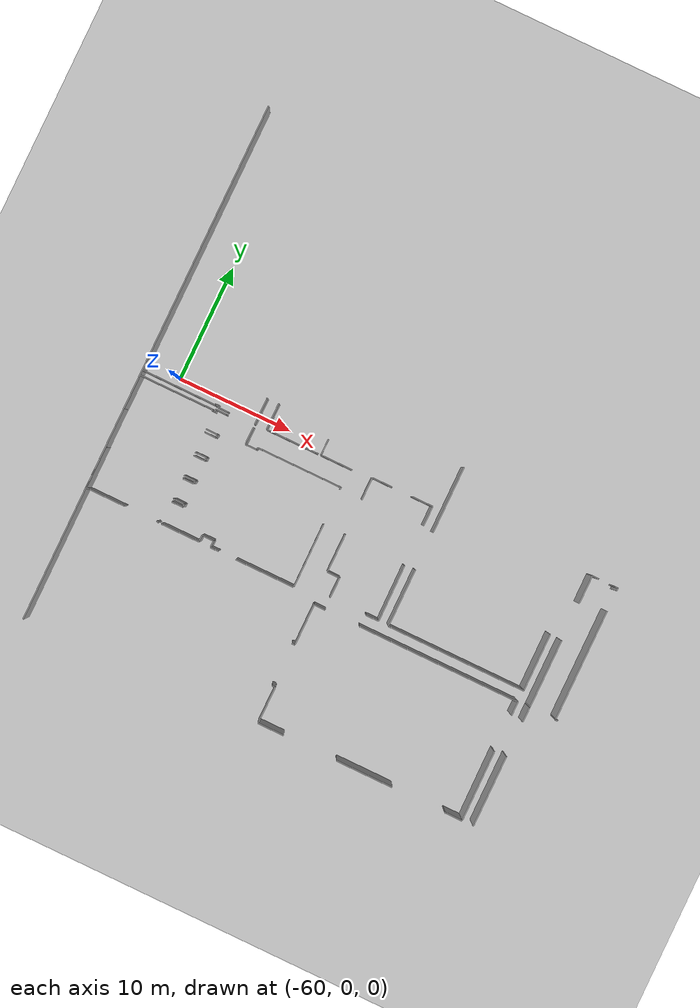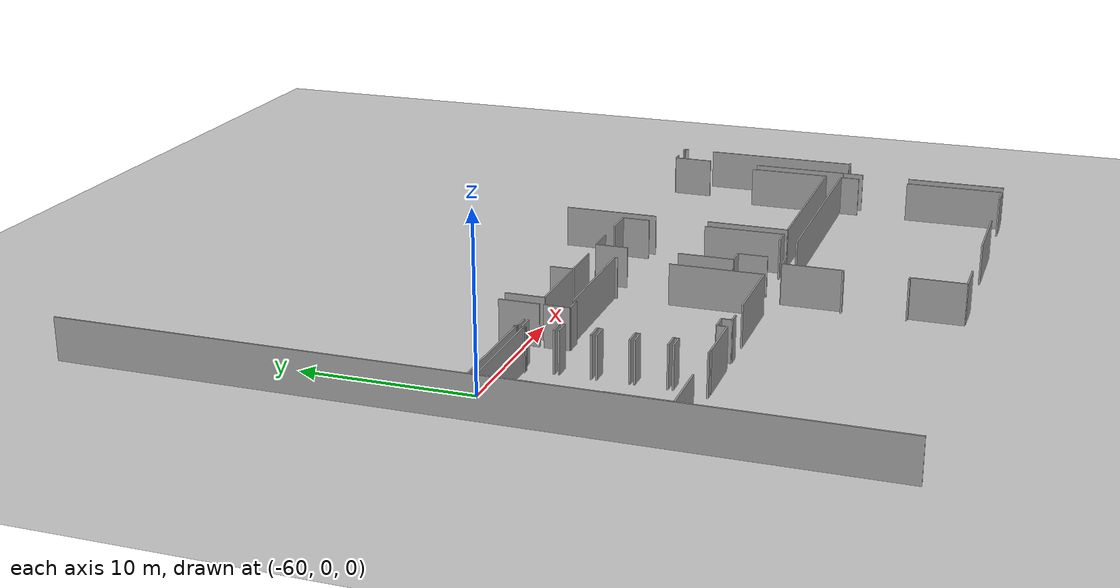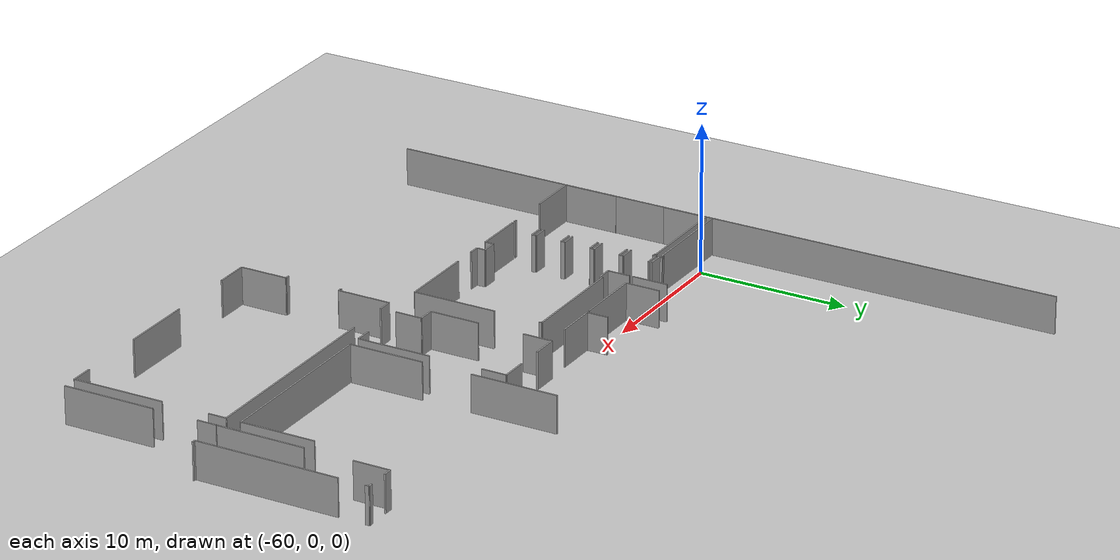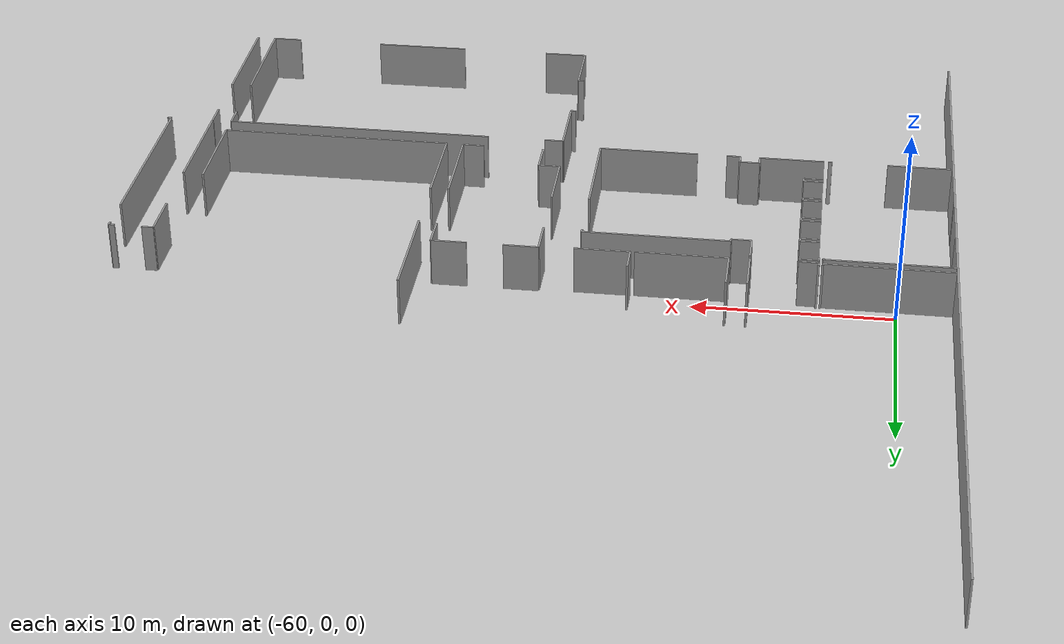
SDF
<sdf version="1.6">
 <world name="default">
  <model name="ground_plane">
   <static>1</static>
   <link name="link">
    <collision name="collision">
     <geometry><plane><normal>0 0 1</normal><size>100 100</size></plane></geometry>
     <surface><friction><ode><mu>100</mu><mu2>50</mu2></ode></friction></surface>
    </collision>
    <visual name="visual">
     <cast_shadows>0</cast_shadows>
     <geometry><plane><normal>0 0 1</normal><size>100 100</size></plane></geometry>
     <material>
      <script><uri>file://media/materials/scripts/gazebo.material</uri><name>Gazebo/Grey</name></script>
     </material>
    </visual>
   </link>
  </model>
  <model name="50010539">
   <static>1</static>
   <link name="Wall_62">
    <collision name="Wall_62_Collision">
     <geometry><box><size>2.37582886614 0.1 2.5</size></box></geometry>
     <pose>1.18791443307 0 1.25 0 0 0</pose>
    </collision>
    <visual name="Wall_62_Visual">
     <pose>1.18791443307 0 1.25 0 0 0</pose>
     <geometry><box><size>2.37582886614 0.1 2.5</size></box></geometry>
     <material>
      <script><uri>file://media/materials/scripts/gazebo.material</uri><name>Gazebo/Grey</name></script>
      <ambient>1 1 1 1</ambient>
     </material>
    </visual>
    <pose>10.0250247707 -23.6268133432 0 0 0 1.57079632679</pose>
   </link>
   <link name="Wall_71">
    <collision name="Wall_71_Collision">
     <geometry><box><size>0.192195320241 0.1 2.5</size></box></geometry>
     <pose>0.0960976601204 0 1.25 0 0 0</pose>
    </collision>
    <visual name="Wall_71_Visual">
     <pose>0.0960976601204 0 1.25 0 0 0</pose>
     <geometry><box><size>0.192195320241 0.1 2.5</size></box></geometry>
     <material>
      <script><uri>file://media/materials/scripts/gazebo.material</uri><name>Gazebo/Grey</name></script>
      <ambient>1 1 1 1</ambient>
     </material>
    </visual>
    <pose>6.69037880135 -23.4117527502 0 0 0 -1.57079632679</pose>
   </link>
   <link name="Wall_72">
    <collision name="Wall_72_Collision">
     <geometry><box><size>0.970265139982 0.1 2.5</size></box></geometry>
     <pose>0.485132569991 0 1.25 0 0 0</pose>
    </collision>
    <visual name="Wall_72_Visual">
     <pose>0.485132569991 0 1.25 0 0 0</pose>
     <geometry><box><size>0.970265139982 0.1 2.5</size></box></geometry>
     <material>
      <script><uri>file://media/materials/scripts/gazebo.material</uri><name>Gazebo/Grey</name></script>
      <ambient>1 1 1 1</ambient>
     </material>
    </visual>
    <pose>6.69037880135 -23.6039480704 0 0 0 -0.0235681863805</pose>
   </link>
   <link name="Wall_73">
    <collision name="Wall_73_Collision">
     <geometry><box><size>0.114834480831 0.1 2.5</size></box></geometry>
     <pose>0.0574172404156 0 1.25 0 0 0</pose>
    </collision>
    <visual name="Wall_73_Visual">
     <pose>0.0574172404156 0 1.25 0 0 0</pose>
     <geometry><box><size>0.114834480831 0.1 2.5</size></box></geometry>
     <material>
      <script><uri>file://media/materials/scripts/gazebo.material</uri><name>Gazebo/Grey</name></script>
      <ambient>1 1 1 1</ambient>
     </material>
    </visual>
    <pose>6.48954548919 -23.5500876502 0 0 0 1.57079632679</pose>
   </link>
   <link name="Wall_77">
    <collision name="Wall_77_Collision">
     <geometry><box><size>6.48961011872 0.1 2.5</size></box></geometry>
     <pose>3.24480505936 0 1.25 0 0 0</pose>
    </collision>
    <visual name="Wall_77_Visual">
     <pose>3.24480505936 0 1.25 0 0 0</pose>
     <geometry><box><size>6.48961011872 0.1 2.5</size></box></geometry>
     <material>
      <script><uri>file://media/materials/scripts/gazebo.material</uri><name>Gazebo/Grey</name></script>
      <ambient>1 1 1 1</ambient>
     </material>
    </visual>
    <pose>0.0 -23.5211249714 0 0 0 -0.00446294529409</pose>
   </link>
   <link name="Wall_78">
    <collision name="Wall_78_Collision">
     <geometry><box><size>0.126267117197 0.1 2.5</size></box></geometry>
     <pose>0.0631335585986 0 1.25 0 0 0</pose>
    </collision>
    <visual name="Wall_78_Visual">
     <pose>0.0631335585986 0 1.25 0 0 0</pose>
     <geometry><box><size>0.126267117197 0.1 2.5</size></box></geometry>
     <material>
      <script><uri>file://media/materials/scripts/gazebo.material</uri><name>Gazebo/Grey</name></script>
      <ambient>1 1 1 1</ambient>
     </material>
    </visual>
    <pose>6.47303168111 -24.0902162039 0 0 0 1.57079632679</pose>
   </link>
   <link name="Wall_79">
    <collision name="Wall_79_Collision">
     <geometry><box><size>6.44902314474 0.1 2.5</size></box></geometry>
     <pose>3.22451157237 0 1.25 0 0 0</pose>
    </collision>
    <visual name="Wall_79_Visual">
     <pose>3.22451157237 0 1.25 0 0 0</pose>
     <geometry><box><size>6.44902314474 0.1 2.5</size></box></geometry>
     <material>
      <script><uri>file://media/materials/scripts/gazebo.material</uri><name>Gazebo/Grey</name></script>
      <ambient>1 1 1 1</ambient>
     </material>
    </visual>
    <pose>6.47303168111 -23.9639490867 0 0 0 3.14159265359</pose>
   </link>
   <link name="Wall_80">
    <collision name="Wall_80_Collision">
     <geometry><box><size>2.97464495313 0.1 2.5</size></box></geometry>
     <pose>1.48732247656 0 1.25 0 0 0</pose>
    </collision>
    <visual name="Wall_80_Visual">
     <pose>1.48732247656 0 1.25 0 0 0</pose>
     <geometry><box><size>2.97464495313 0.1 2.5</size></box></geometry>
     <material>
      <script><uri>file://media/materials/scripts/gazebo.material</uri><name>Gazebo/Grey</name></script>
      <ambient>1 1 1 1</ambient>
     </material>
    </visual>
    <pose>0.0240085363685 -23.9639490867 0 0 0 -1.57079632679</pose>
   </link>
   <link name="Wall_81">
    <collision name="Wall_81_Collision">
     <geometry><box><size>3.62224028861 0.1 2.5</size></box></geometry>
     <pose>1.81112014431 0 1.25 0 0 0</pose>
    </collision>
    <visual name="Wall_81_Visual">
     <pose>1.81112014431 0 1.25 0 0 0</pose>
     <geometry><box><size>3.62224028861 0.1 2.5</size></box></geometry>
     <material>
      <script><uri>file://media/materials/scripts/gazebo.material</uri><name>Gazebo/Grey</name></script>
      <ambient>1 1 1 1</ambient>
     </material>
    </visual>
    <pose>0.0240085363685 -30.3553009324 0 0 0 -1.57079632679</pose>
   </link>
   <link name="Wall_82">
    <collision name="Wall_82_Collision">
     <geometry><box><size>3.37656563604 0.1 2.5</size></box></geometry>
     <pose>1.68828281802 0 1.25 0 0 0</pose>
    </collision>
    <visual name="Wall_82_Visual">
     <pose>1.68828281802 0 1.25 0 0 0</pose>
     <geometry><box><size>3.37656563604 0.1 2.5</size></box></geometry>
     <material>
      <script><uri>file://media/materials/scripts/gazebo.material</uri><name>Gazebo/Grey</name></script>
      <ambient>1 1 1 1</ambient>
     </material>
    </visual>
    <pose>0.0240085363685 -33.977541221 0 0 0 0.0</pose>
   </link>
   <link name="Wall_83">
    <collision name="Wall_83_Collision">
     <geometry><box><size>0.198610005015 0.1 2.5</size></box></geometry>
     <pose>0.0993050025077 0 1.25 0 0 0</pose>
    </collision>
    <visual name="Wall_83_Visual">
     <pose>0.0993050025077 0 1.25 0 0 0</pose>
     <geometry><box><size>0.198610005015 0.1 2.5</size></box></geometry>
     <material>
      <script><uri>file://media/materials/scripts/gazebo.material</uri><name>Gazebo/Grey</name></script>
      <ambient>1 1 1 1</ambient>
     </material>
    </visual>
    <pose>6.27512004268 -33.977541221 0 0 0 -0.0838848446478</pose>
   </link>
   <link name="Wall_84">
    <collision name="Wall_84_Collision">
     <geometry><box><size>4.61141739285 0.1 2.5</size></box></geometry>
     <pose>2.30570869643 0 1.25 0 0 0</pose>
    </collision>
    <visual name="Wall_84_Visual">
     <pose>2.30570869643 0 1.25 0 0 0</pose>
     <geometry><box><size>4.61141739285 0.1 2.5</size></box></geometry>
     <material>
      <script><uri>file://media/materials/scripts/gazebo.material</uri><name>Gazebo/Grey</name></script>
      <ambient>1 1 1 1</ambient>
     </material>
    </visual>
    <pose>15.6615685577 -23.5404334239 0 0 0 3.14159265359</pose>
   </link>
   <link name="Wall_85">
    <collision name="Wall_85_Collision">
     <geometry><box><size>2.30024643683 0.1 2.5</size></box></geometry>
     <pose>1.15012321841 0 1.25 0 0 0</pose>
    </collision>
    <visual name="Wall_85_Visual">
     <pose>1.15012321841 0 1.25 0 0 0</pose>
     <geometry><box><size>2.30024643683 0.1 2.5</size></box></geometry>
     <material>
      <script><uri>file://media/materials/scripts/gazebo.material</uri><name>Gazebo/Grey</name></script>
      <ambient>1 1 1 1</ambient>
     </material>
    </visual>
    <pose>11.0501511649 -23.5404334239 0 0 0 1.57079632679</pose>
   </link>
   <link name="Wall_96">
    <collision name="Wall_96_Collision">
     <geometry><box><size>2.77889281268 0.1 2.5</size></box></geometry>
     <pose>1.38944640634 0 1.25 0 0 0</pose>
    </collision>
    <visual name="Wall_96_Visual">
     <pose>1.38944640634 0 1.25 0 0 0</pose>
     <geometry><box><size>2.77889281268 0.1 2.5</size></box></geometry>
     <material>
      <script><uri>file://media/materials/scripts/gazebo.material</uri><name>Gazebo/Grey</name></script>
      <ambient>1 1 1 1</ambient>
     </material>
    </visual>
    <pose>18.6571733442 -23.5269683189 0 0 0 3.14159265359</pose>
   </link>
   <link name="Wall_97">
    <collision name="Wall_97_Collision">
     <geometry><box><size>1.40037092554 0.1 2.5</size></box></geometry>
     <pose>0.700185462768 0 1.25 0 0 0</pose>
    </collision>
    <visual name="Wall_97_Visual">
     <pose>0.700185462768 0 1.25 0 0 0</pose>
     <geometry><box><size>1.40037092554 0.1 2.5</size></box></geometry>
     <material>
      <script><uri>file://media/materials/scripts/gazebo.material</uri><name>Gazebo/Grey</name></script>
      <ambient>1 1 1 1</ambient>
     </material>
    </visual>
    <pose>15.8782805315 -23.5269683189 0 0 0 1.57079632679</pose>
   </link>
   <link name="Wall_101">
    <collision name="Wall_101_Collision">
     <geometry><box><size>5.1531973273 0.1 2.5</size></box></geometry>
     <pose>2.57659866365 0 1.25 0 0 0</pose>
    </collision>
    <visual name="Wall_101_Visual">
     <pose>2.57659866365 0 1.25 0 0 0</pose>
     <geometry><box><size>5.1531973273 0.1 2.5</size></box></geometry>
     <material>
      <script><uri>file://media/materials/scripts/gazebo.material</uri><name>Gazebo/Grey</name></script>
      <ambient>1 1 1 1</ambient>
     </material>
    </visual>
    <pose>18.4778079825 -34.0062498412 0 0 0 3.14159265359</pose>
   </link>
   <link name="Wall_102">
    <collision name="Wall_102_Collision">
     <geometry><box><size>0.70844236681 0.1 2.5</size></box></geometry>
     <pose>0.354221183405 0 1.25 0 0 0</pose>
    </collision>
    <visual name="Wall_102_Visual">
     <pose>0.354221183405 0 1.25 0 0 0</pose>
     <geometry><box><size>0.70844236681 0.1 2.5</size></box></geometry>
     <material>
      <script><uri>file://media/materials/scripts/gazebo.material</uri><name>Gazebo/Grey</name></script>
      <ambient>1 1 1 1</ambient>
     </material>
    </visual>
    <pose>11.786921064 -34.0062498412 0 0 0 3.14159265359</pose>
   </link>
   <link name="Wall_103">
    <collision name="Wall_103_Collision">
     <geometry><box><size>0.58293742537 0.1 2.5</size></box></geometry>
     <pose>0.291468712685 0 1.25 0 0 0</pose>
    </collision>
    <visual name="Wall_103_Visual">
     <pose>0.291468712685 0 1.25 0 0 0</pose>
     <geometry><box><size>0.58293742537 0.1 2.5</size></box></geometry>
     <material>
      <script><uri>file://media/materials/scripts/gazebo.material</uri><name>Gazebo/Grey</name></script>
      <ambient>1 1 1 1</ambient>
     </material>
    </visual>
    <pose>11.0784786972 -34.0062498412 0 0 0 1.57079632679</pose>
   </link>
   <link name="Wall_104">
    <collision name="Wall_104_Collision">
     <geometry><box><size>1.02982647799 0.1 2.5</size></box></geometry>
     <pose>0.514913238993 0 1.25 0 0 0</pose>
    </collision>
    <visual name="Wall_104_Visual">
     <pose>0.514913238993 0 1.25 0 0 0</pose>
     <geometry><box><size>1.02982647799 0.1 2.5</size></box></geometry>
     <material>
      <script><uri>file://media/materials/scripts/gazebo.material</uri><name>Gazebo/Grey</name></script>
      <ambient>1 1 1 1</ambient>
     </material>
    </visual>
    <pose>11.0784786972 -33.4233124158 0 0 0 3.14159265359</pose>
   </link>
   <link name="Wall_105">
    <collision name="Wall_105_Collision">
     <geometry><box><size>0.574426462742 0.1 2.5</size></box></geometry>
     <pose>0.287213231371 0 1.25 0 0 0</pose>
    </collision>
    <visual name="Wall_105_Visual">
     <pose>0.287213231371 0 1.25 0 0 0</pose>
     <geometry><box><size>0.574426462742 0.1 2.5</size></box></geometry>
     <material>
      <script><uri>file://media/materials/scripts/gazebo.material</uri><name>Gazebo/Grey</name></script>
      <ambient>1 1 1 1</ambient>
     </material>
    </visual>
    <pose>10.0486522192 -33.4233124158 0 0 0 -1.57079632679</pose>
   </link>
   <link name="Wall_106">
    <collision name="Wall_106_Collision">
     <geometry><box><size>3.35725718351 0.1 2.5</size></box></geometry>
     <pose>1.67862859175 0 1.25 0 0 0</pose>
    </collision>
    <visual name="Wall_106_Visual">
     <pose>1.67862859175 0 1.25 0 0 0</pose>
     <geometry><box><size>3.35725718351 0.1 2.5</size></box></geometry>
     <material>
      <script><uri>file://media/materials/scripts/gazebo.material</uri><name>Gazebo/Grey</name></script>
      <ambient>1 1 1 1</ambient>
     </material>
    </visual>
    <pose>10.0486522192 -33.9977388786 0 0 0 3.14159265359</pose>
   </link>
   <link name="Wall_107">
    <collision name="Wall_107_Collision">
     <geometry><box><size>0.993115012322 0.1 2.5</size></box></geometry>
     <pose>0.496557506161 0 1.25 0 0 0</pose>
    </collision>
    <visual name="Wall_107_Visual">
     <pose>0.496557506161 0 1.25 0 0 0</pose>
     <geometry><box><size>0.993115012322 0.1 2.5</size></box></geometry>
     <material>
      <script><uri>file://media/materials/scripts/gazebo.material</uri><name>Gazebo/Grey</name></script>
      <ambient>1 1 1 1</ambient>
     </material>
    </visual>
    <pose>6.6913950357 -32.0447905287 0 0 0 0.0</pose>
   </link>
   <link name="Wall_108">
    <collision name="Wall_108_Collision">
     <geometry><box><size>0.279972561673 0.1 2.5</size></box></geometry>
     <pose>0.139986280836 0 1.25 0 0 0</pose>
    </collision>
    <visual name="Wall_108_Visual">
     <pose>0.139986280836 0 1.25 0 0 0</pose>
     <geometry><box><size>0.279972561673 0.1 2.5</size></box></geometry>
     <material>
      <script><uri>file://media/materials/scripts/gazebo.material</uri><name>Gazebo/Grey</name></script>
      <ambient>1 1 1 1</ambient>
     </material>
    </visual>
    <pose>7.68451004802 -32.0447905287 0 0 0 1.57079632679</pose>
   </link>
   <link name="Wall_109">
    <collision name="Wall_109_Collision">
     <geometry><box><size>0.994004217373 0.1 2.5</size></box></geometry>
     <pose>0.497002108686 0 1.25 0 0 0</pose>
    </collision>
    <visual name="Wall_109_Visual">
     <pose>0.497002108686 0 1.25 0 0 0</pose>
     <geometry><box><size>0.994004217373 0.1 2.5</size></box></geometry>
     <material>
      <script><uri>file://media/materials/scripts/gazebo.material</uri><name>Gazebo/Grey</name></script>
      <ambient>1 1 1 1</ambient>
     </material>
    </visual>
    <pose>7.68451004802 -31.764817967 0 0 0 3.14159265359</pose>
   </link>
   <link name="Wall_110">
    <collision name="Wall_110_Collision">
     <geometry><box><size>0.975711999187 0.1 2.5</size></box></geometry>
     <pose>0.487855999594 0 1.25 0 0 0</pose>
    </collision>
    <visual name="Wall_110_Visual">
     <pose>0.487855999594 0 1.25 0 0 0</pose>
     <geometry><box><size>0.975711999187 0.1 2.5</size></box></geometry>
     <material>
      <script><uri>file://media/materials/scripts/gazebo.material</uri><name>Gazebo/Grey</name></script>
      <ambient>1 1 1 1</ambient>
     </material>
    </visual>
    <pose>6.69050583064 -29.9818348111 0 0 0 0.0</pose>
   </link>
   <link name="Wall_111">
    <collision name="Wall_111_Collision">
     <geometry><box><size>0.253296410152 0.1 2.5</size></box></geometry>
     <pose>0.126648205076 0 1.25 0 0 0</pose>
    </collision>
    <visual name="Wall_111_Visual">
     <pose>0.126648205076 0 1.25 0 0 0</pose>
     <geometry><box><size>0.253296410152 0.1 2.5</size></box></geometry>
     <material>
      <script><uri>file://media/materials/scripts/gazebo.material</uri><name>Gazebo/Grey</name></script>
      <ambient>1 1 1 1</ambient>
     </material>
    </visual>
    <pose>7.66621782983 -29.9818348111 0 0 0 1.57079632679</pose>
   </link>
   <link name="Wall_112">
    <collision name="Wall_112_Collision">
     <geometry><box><size>0.984095932522 0.1 2.5</size></box></geometry>
     <pose>0.492047966261 0 1.25 0 0 0</pose>
    </collision>
    <visual name="Wall_112_Visual">
     <pose>0.492047966261 0 1.25 0 0 0</pose>
     <geometry><box><size>0.984095932522 0.1 2.5</size></box></geometry>
     <material>
      <script><uri>file://media/materials/scripts/gazebo.material</uri><name>Gazebo/Grey</name></script>
      <ambient>1 1 1 1</ambient>
     </material>
    </visual>
    <pose>7.66621782983 -29.728538401 0 0 0 3.14159265359</pose>
   </link>
   <link name="Wall_113">
    <collision name="Wall_113_Collision">
     <geometry><box><size>0.99692589111 0.1 2.5</size></box></geometry>
     <pose>0.498462945555 0 1.25 0 0 0</pose>
    </collision>
    <visual name="Wall_113_Visual">
     <pose>0.498462945555 0 1.25 0 0 0</pose>
     <geometry><box><size>0.99692589111 0.1 2.5</size></box></geometry>
     <material>
      <script><uri>file://media/materials/scripts/gazebo.material</uri><name>Gazebo/Grey</name></script>
      <ambient>1 1 1 1</ambient>
     </material>
    </visual>
    <pose>6.68212189731 -27.9369172531 0 0 0 0.0</pose>
   </link>
   <link name="Wall_114">
    <collision name="Wall_114_Collision">
     <geometry><box><size>0.285561850563 0.1 2.5</size></box></geometry>
     <pose>0.142780925281 0 1.25 0 0 0</pose>
    </collision>
    <visual name="Wall_114_Visual">
     <pose>0.142780925281 0 1.25 0 0 0</pose>
     <geometry><box><size>0.285561850563 0.1 2.5</size></box></geometry>
     <material>
      <script><uri>file://media/materials/scripts/gazebo.material</uri><name>Gazebo/Grey</name></script>
      <ambient>1 1 1 1</ambient>
     </material>
    </visual>
    <pose>7.67904778842 -27.9369172531 0 0 0 1.57079632679</pose>
   </link>
   <link name="Wall_115">
    <collision name="Wall_115_Collision">
     <geometry><box><size>0.999593506263 0.1 2.5</size></box></geometry>
     <pose>0.499796753131 0 1.25 0 0 0</pose>
    </collision>
    <visual name="Wall_115_Visual">
     <pose>0.499796753131 0 1.25 0 0 0</pose>
     <geometry><box><size>0.999593506263 0.1 2.5</size></box></geometry>
     <material>
      <script><uri>file://media/materials/scripts/gazebo.material</uri><name>Gazebo/Grey</name></script>
      <ambient>1 1 1 1</ambient>
     </material>
    </visual>
    <pose>7.67904778842 -27.6513554026 0 0 0 3.14159265359</pose>
   </link>
   <link name="Wall_116">
    <collision name="Wall_116_Collision">
     <geometry><box><size>0.990574426463 0.1 2.5</size></box></geometry>
     <pose>0.495287213231 0 1.25 0 0 0</pose>
    </collision>
    <visual name="Wall_116_Visual">
     <pose>0.495287213231 0 1.25 0 0 0</pose>
     <geometry><box><size>0.990574426463 0.1 2.5</size></box></geometry>
     <material>
      <script><uri>file://media/materials/scripts/gazebo.material</uri><name>Gazebo/Grey</name></script>
      <ambient>1 1 1 1</ambient>
     </material>
    </visual>
    <pose>6.67945428216 -25.8822184396 0 0 0 0.0</pose>
   </link>
   <link name="Wall_117">
    <collision name="Wall_117_Collision">
     <geometry><box><size>0.274383272783 0.1 2.5</size></box></geometry>
     <pose>0.137191636391 0 1.25 0 0 0</pose>
    </collision>
    <visual name="Wall_117_Visual">
     <pose>0.137191636391 0 1.25 0 0 0</pose>
     <geometry><box><size>0.274383272783 0.1 2.5</size></box></geometry>
     <material>
      <script><uri>file://media/materials/scripts/gazebo.material</uri><name>Gazebo/Grey</name></script>
      <ambient>1 1 1 1</ambient>
     </material>
    </visual>
    <pose>7.67002870862 -25.8822184396 0 0 0 1.57079632679</pose>
   </link>
   <link name="Wall_118">
    <collision name="Wall_118_Collision">
     <geometry><box><size>0.989431162826 0.1 2.5</size></box></geometry>
     <pose>0.494715581413 0 1.25 0 0 0</pose>
    </collision>
    <visual name="Wall_118_Visual">
     <pose>0.494715581413 0 1.25 0 0 0</pose>
     <geometry><box><size>0.989431162826 0.1 2.5</size></box></geometry>
     <material>
      <script><uri>file://media/materials/scripts/gazebo.material</uri><name>Gazebo/Grey</name></script>
      <ambient>1 1 1 1</ambient>
     </material>
    </visual>
    <pose>7.67002870862 -25.6078351668 0 0 0 3.14159265359</pose>
   </link>
   <link name="Wall_119">
    <collision name="Wall_119_Collision">
     <geometry><box><size>0.252534234394 0.1 2.5</size></box></geometry>
     <pose>0.126267117197 0 1.25 0 0 0</pose>
    </collision>
    <visual name="Wall_119_Visual">
     <pose>0.126267117197 0 1.25 0 0 0</pose>
     <geometry><box><size>0.252534234394 0.1 2.5</size></box></geometry>
     <material>
      <script><uri>file://media/materials/scripts/gazebo.material</uri><name>Gazebo/Grey</name></script>
      <ambient>1 1 1 1</ambient>
     </material>
    </visual>
    <pose>6.68059754579 -24.1027921039 0 0 0 1.57079632679</pose>
   </link>
   <link name="Wall_120">
    <collision name="Wall_120_Collision">
     <geometry><box><size>0.983079698178 0.1 2.5</size></box></geometry>
     <pose>0.491539849089 0 1.25 0 0 0</pose>
    </collision>
    <visual name="Wall_120_Visual">
     <pose>0.491539849089 0 1.25 0 0 0</pose>
     <geometry><box><size>0.983079698178 0.1 2.5</size></box></geometry>
     <material>
      <script><uri>file://media/materials/scripts/gazebo.material</uri><name>Gazebo/Grey</name></script>
      <ambient>1 1 1 1</ambient>
     </material>
    </visual>
    <pose>6.68059754579 -23.8502578695 0 0 0 0.0</pose>
   </link>
   <link name="Wall_121">
    <collision name="Wall_121_Collision">
     <geometry><box><size>1.50313762354 0.1 2.5</size></box></geometry>
     <pose>0.751568811768 0 1.25 0 0 0</pose>
    </collision>
    <visual name="Wall_121_Visual">
     <pose>0.751568811768 0 1.25 0 0 0</pose>
     <geometry><box><size>1.50313762354 0.1 2.5</size></box></geometry>
     <material>
      <script><uri>file://media/materials/scripts/gazebo.material</uri><name>Gazebo/Grey</name></script>
      <ambient>1 1 1 1</ambient>
     </material>
    </visual>
    <pose>10.0320113818 -23.8502578695 0 0 0 -1.57079632679</pose>
   </link>
   <link name="Wall_122">
    <collision name="Wall_122_Collision">
     <geometry><box><size>1.01712354869 0.1 2.5</size></box></geometry>
     <pose>0.508561774345 0 1.25 0 0 0</pose>
    </collision>
    <visual name="Wall_122_Visual">
     <pose>0.508561774345 0 1.25 0 0 0</pose>
     <geometry><box><size>1.01712354869 0.1 2.5</size></box></geometry>
     <material>
      <script><uri>file://media/materials/scripts/gazebo.material</uri><name>Gazebo/Grey</name></script>
      <ambient>1 1 1 1</ambient>
     </material>
    </visual>
    <pose>10.0320113818 -25.353395493 0 0 0 0.0</pose>
   </link>
   <link name="Wall_123">
    <collision name="Wall_123_Collision">
     <geometry><box><size>0.180381595996 0.1 2.5</size></box></geometry>
     <pose>0.090190797998 0 1.25 0 0 0</pose>
    </collision>
    <visual name="Wall_123_Visual">
     <pose>0.090190797998 0 1.25 0 0 0</pose>
     <geometry><box><size>0.180381595996 0.1 2.5</size></box></geometry>
     <material>
      <script><uri>file://media/materials/scripts/gazebo.material</uri><name>Gazebo/Grey</name></script>
      <ambient>1 1 1 1</ambient>
     </material>
    </visual>
    <pose>11.0491349305 -25.353395493 0 0 0 1.57079632679</pose>
   </link>
   <link name="Wall_124">
    <collision name="Wall_124_Collision">
     <geometry><box><size>7.40656995503 0.1 2.5</size></box></geometry>
     <pose>3.70328497752 0 1.25 0 0 0</pose>
    </collision>
    <visual name="Wall_124_Visual">
     <pose>3.70328497752 0 1.25 0 0 0</pose>
     <geometry><box><size>7.40656995503 0.1 2.5</size></box></geometry>
     <material>
      <script><uri>file://media/materials/scripts/gazebo.material</uri><name>Gazebo/Grey</name></script>
      <ambient>1 1 1 1</ambient>
     </material>
    </visual>
    <pose>11.0491349305 -25.173013897 0 0 0 0.0</pose>
   </link>
   <link name="Wall_125">
    <collision name="Wall_125_Collision">
     <geometry><box><size>0.184192474785 0.1 2.5</size></box></geometry>
     <pose>0.0920962373923 0 1.25 0 0 0</pose>
    </collision>
    <visual name="Wall_125_Visual">
     <pose>0.0920962373923 0 1.25 0 0 0</pose>
     <geometry><box><size>0.184192474785 0.1 2.5</size></box></geometry>
     <material>
      <script><uri>file://media/materials/scripts/gazebo.material</uri><name>Gazebo/Grey</name></script>
      <ambient>1 1 1 1</ambient>
     </material>
    </visual>
    <pose>18.4557048855 -25.173013897 0 0 0 -1.57079632679</pose>
   </link>
   <link name="Wall_126">
    <collision name="Wall_126_Collision">
     <geometry><box><size>5.55287547356 0.1 2.5</size></box></geometry>
     <pose>2.77643773678 0 1.25 0 0 0</pose>
    </collision>
    <visual name="Wall_126_Visual">
     <pose>2.77643773678 0 1.25 0 0 0</pose>
     <geometry><box><size>5.55287547356 0.1 2.5</size></box></geometry>
     <material>
      <script><uri>file://media/materials/scripts/gazebo.material</uri><name>Gazebo/Grey</name></script>
      <ambient>1 1 1 1</ambient>
     </material>
    </visual>
    <pose>18.4557048855 -28.4534183583 0 0 0 -1.56681583859</pose>
   </link>
   <link name="Wall_127">
    <collision name="Wall_127_Collision">
     <geometry><box><size>1.1233200376 0.1 2.5</size></box></geometry>
     <pose>0.5616600188 0 1.25 0 0 0</pose>
    </collision>
    <visual name="Wall_127_Visual">
     <pose>0.5616600188 0 1.25 0 0 0</pose>
     <geometry><box><size>1.1233200376 0.1 2.5</size></box></geometry>
     <material>
      <script><uri>file://media/materials/scripts/gazebo.material</uri><name>Gazebo/Grey</name></script>
      <ambient>1 1 1 1</ambient>
     </material>
    </visual>
    <pose>25.7758949214 -33.5298899926 0 0 0 3.14159265359</pose>
   </link>
   <link name="Wall_128">
    <collision name="Wall_128_Collision">
     <geometry><box><size>1.77409110541 0.1 2.5</size></box></geometry>
     <pose>0.887045552704 0 1.25 0 0 0</pose>
    </collision>
    <visual name="Wall_128_Visual">
     <pose>0.887045552704 0 1.25 0 0 0</pose>
     <geometry><box><size>1.77409110541 0.1 2.5</size></box></geometry>
     <material>
      <script><uri>file://media/materials/scripts/gazebo.material</uri><name>Gazebo/Grey</name></script>
      <ambient>1 1 1 1</ambient>
     </material>
    </visual>
    <pose>21.471253271 -33.5298899926 0 0 0 1.57079632679</pose>
   </link>
   <link name="Wall_129">
    <collision name="Wall_129_Collision">
     <geometry><box><size>1.08927618709 0.1 2.5</size></box></geometry>
     <pose>0.544638093544 0 1.25 0 0 0</pose>
    </collision>
    <visual name="Wall_129_Visual">
     <pose>0.544638093544 0 1.25 0 0 0</pose>
     <geometry><box><size>1.08927618709 0.1 2.5</size></box></geometry>
     <material>
      <script><uri>file://media/materials/scripts/gazebo.material</uri><name>Gazebo/Grey</name></script>
      <ambient>1 1 1 1</ambient>
     </material>
    </visual>
    <pose>21.471253271 -31.7557988872 0 0 0 3.14159265359</pose>
   </link>
   <link name="Wall_130">
    <collision name="Wall_130_Collision">
     <geometry><box><size>3.315845634 0.1 2.5</size></box></geometry>
     <pose>1.657922817 0 1.25 0 0 0</pose>
    </collision>
    <visual name="Wall_130_Visual">
     <pose>1.657922817 0 1.25 0 0 0</pose>
     <geometry><box><size>3.315845634 0.1 2.5</size></box></geometry>
     <material>
      <script><uri>file://media/materials/scripts/gazebo.material</uri><name>Gazebo/Grey</name></script>
      <ambient>1 1 1 1</ambient>
     </material>
    </visual>
    <pose>20.3819770839 -31.7557988872 0 0 0 1.57079632679</pose>
   </link>
   <link name="Wall_131">
    <collision name="Wall_131_Collision">
     <geometry><box><size>1.95955387312 0.1 2.5</size></box></geometry>
     <pose>0.979776936562 0 1.25 0 0 0</pose>
    </collision>
    <visual name="Wall_131_Visual">
     <pose>0.979776936562 0 1.25 0 0 0</pose>
     <geometry><box><size>1.95955387312 0.1 2.5</size></box></geometry>
     <material>
      <script><uri>file://media/materials/scripts/gazebo.material</uri><name>Gazebo/Grey</name></script>
      <ambient>1 1 1 1</ambient>
     </material>
    </visual>
    <pose>20.3819770839 -25.3558090496 0 0 0 1.57079632679</pose>
   </link>
   <link name="Wall_132">
    <collision name="Wall_132_Collision">
     <geometry><box><size>1.76011788318 0.1 2.5</size></box></geometry>
     <pose>0.880058941592 0 1.25 0 0 0</pose>
    </collision>
    <visual name="Wall_132_Visual">
     <pose>0.880058941592 0 1.25 0 0 0</pose>
     <geometry><box><size>1.76011788318 0.1 2.5</size></box></geometry>
     <material>
      <script><uri>file://media/materials/scripts/gazebo.material</uri><name>Gazebo/Grey</name></script>
      <ambient>1 1 1 1</ambient>
     </material>
    </visual>
    <pose>20.3819770839 -23.3962551764 0 0 0 0.0</pose>
   </link>
   <link name="Wall_133">
    <collision name="Wall_133_Collision">
     <geometry><box><size>1.77942633571 0.1 2.5</size></box></geometry>
     <pose>0.889713167857 0 1.25 0 0 0</pose>
    </collision>
    <visual name="Wall_133_Visual">
     <pose>0.889713167857 0 1.25 0 0 0</pose>
     <geometry><box><size>1.77942633571 0.1 2.5</size></box></geometry>
     <material>
      <script><uri>file://media/materials/scripts/gazebo.material</uri><name>Gazebo/Grey</name></script>
      <ambient>1 1 1 1</ambient>
     </material>
    </visual>
    <pose>23.9625517644 -23.3962551764 0 0 0 0.0</pose>
   </link>
   <link name="Wall_134">
    <collision name="Wall_134_Collision">
     <geometry><box><size>1.69063285994 0.1 2.5</size></box></geometry>
     <pose>0.845316429969 0 1.25 0 0 0</pose>
    </collision>
    <visual name="Wall_134_Visual">
     <pose>0.845316429969 0 1.25 0 0 0</pose>
     <geometry><box><size>1.69063285994 0.1 2.5</size></box></geometry>
     <material>
      <script><uri>file://media/materials/scripts/gazebo.material</uri><name>Gazebo/Grey</name></script>
      <ambient>1 1 1 1</ambient>
     </material>
    </visual>
    <pose>25.7419781001 -23.3962551764 0 0 0 -1.57079632679</pose>
   </link>
   <link name="Wall_135">
    <collision name="Wall_135_Collision">
     <geometry><box><size>4.89887506461 0.1 2.5</size></box></geometry>
     <pose>2.4494375323 0 1.25 0 0 0</pose>
    </collision>
    <visual name="Wall_135_Visual">
     <pose>2.4494375323 0 1.25 0 0 0</pose>
     <geometry><box><size>4.89887506461 0.1 2.5</size></box></geometry>
     <material>
      <script><uri>file://media/materials/scripts/gazebo.material</uri><name>Gazebo/Grey</name></script>
      <ambient>1 1 1 1</ambient>
     </material>
    </visual>
    <pose>25.7419781001 -28.6311323391 0 0 0 -1.56387288177</pose>
   </link>
   <link name="Wall_147">
    <collision name="Wall_147_Collision">
     <geometry><box><size>11.9915652549 0.1 2.5</size></box></geometry>
     <pose>5.99578262747 0 1.25 0 0 0</pose>
    </collision>
    <visual name="Wall_147_Visual">
     <pose>5.99578262747 0 1.25 0 0 0</pose>
     <geometry><box><size>11.9915652549 0.1 2.5</size></box></geometry>
     <material>
      <script><uri>file://media/materials/scripts/gazebo.material</uri><name>Gazebo/Grey</name></script>
      <ambient>1 1 1 1</ambient>
     </material>
    </visual>
    <pose>38.6533624654 -33.5599959351 0 0 0 3.14159265359</pose>
   </link>
   <link name="Wall_148">
    <collision name="Wall_148_Collision">
     <geometry><box><size>4.98844033434 0.1 2.5</size></box></geometry>
     <pose>2.49422016717 0 1.25 0 0 0</pose>
    </collision>
    <visual name="Wall_148_Visual">
     <pose>2.49422016717 0 1.25 0 0 0</pose>
     <geometry><box><size>4.98844033434 0.1 2.5</size></box></geometry>
     <material>
      <script><uri>file://media/materials/scripts/gazebo.material</uri><name>Gazebo/Grey</name></script>
      <ambient>1 1 1 1</ambient>
     </material>
    </visual>
    <pose>26.6617972104 -33.5599959351 0 0 0 1.57079632679</pose>
   </link>
   <link name="Wall_149">
    <collision name="Wall_149_Collision">
     <geometry><box><size>5.8077792739 0.1 2.5</size></box></geometry>
     <pose>2.90388963695 0 1.25 0 0 0</pose>
    </collision>
    <visual name="Wall_149_Visual">
     <pose>2.90388963695 0 1.25 0 0 0</pose>
     <geometry><box><size>5.8077792739 0.1 2.5</size></box></geometry>
     <material>
      <script><uri>file://media/materials/scripts/gazebo.material</uri><name>Gazebo/Grey</name></script>
      <ambient>1 1 1 1</ambient>
     </material>
    </visual>
    <pose>26.6617972104 -25.2659993394 0 0 0 1.57079632679</pose>
   </link>
   <link name="Wall_152">
    <collision name="Wall_152_Collision">
     <geometry><box><size>4.99951915611 0.1 2.5</size></box></geometry>
     <pose>2.49975957806 0 1.25 0 0 0</pose>
    </collision>
    <visual name="Wall_152_Visual">
     <pose>2.49975957806 0 1.25 0 0 0</pose>
     <geometry><box><size>4.99951915611 0.1 2.5</size></box></geometry>
     <material>
      <script><uri>file://media/materials/scripts/gazebo.material</uri><name>Gazebo/Grey</name></script>
      <ambient>1 1 1 1</ambient>
     </material>
    </visual>
    <pose>38.6368486573 -28.5605040522 0 0 0 -1.56749324152</pose>
   </link>
   <link name="Wall_153">
    <collision name="Wall_153_Collision">
     <geometry><box><size>1.52879754071 0.1 2.5</size></box></geometry>
     <pose>0.764398770356 0 1.25 0 0 0</pose>
    </collision>
    <visual name="Wall_153_Visual">
     <pose>0.764398770356 0 1.25 0 0 0</pose>
     <geometry><box><size>1.52879754071 0.1 2.5</size></box></geometry>
     <material>
      <script><uri>file://media/materials/scripts/gazebo.material</uri><name>Gazebo/Grey</name></script>
      <ambient>1 1 1 1</ambient>
     </material>
    </visual>
    <pose>38.6672086583 -45.0644038515 0 0 0 3.14159265359</pose>
   </link>
   <link name="Wall_154">
    <collision name="Wall_154_Collision">
     <geometry><box><size>4.95299916161 0.1 2.5</size></box></geometry>
     <pose>2.4764995808 0 1.25 0 0 0</pose>
    </collision>
    <visual name="Wall_154_Visual">
     <pose>2.4764995808 0 1.25 0 0 0</pose>
     <geometry><box><size>4.95299916161 0.1 2.5</size></box></geometry>
     <material>
      <script><uri>file://media/materials/scripts/gazebo.material</uri><name>Gazebo/Grey</name></script>
      <ambient>1 1 1 1</ambient>
     </material>
    </visual>
    <pose>32.4740225096 -45.0644038515 0 0 0 3.14159265359</pose>
   </link>
   <link name="Wall_155">
    <collision name="Wall_155_Collision">
     <geometry><box><size>2.25159421763 0.1 2.5</size></box></geometry>
     <pose>1.12579710881 0 1.25 0 0 0</pose>
    </collision>
    <visual name="Wall_155_Visual">
     <pose>1.12579710881 0 1.25 0 0 0</pose>
     <geometry><box><size>2.25159421763 0.1 2.5</size></box></geometry>
     <material>
      <script><uri>file://media/materials/scripts/gazebo.material</uri><name>Gazebo/Grey</name></script>
      <ambient>1 1 1 1</ambient>
     </material>
    </visual>
    <pose>22.8364370824 -45.0644038515 0 0 0 3.14159265359</pose>
   </link>
   <link name="Wall_156">
    <collision name="Wall_156_Collision">
     <geometry><box><size>3.19389751277 0.1 2.5</size></box></geometry>
     <pose>1.59694875638 0 1.25 0 0 0</pose>
    </collision>
    <visual name="Wall_156_Visual">
     <pose>1.59694875638 0 1.25 0 0 0</pose>
     <geometry><box><size>3.19389751277 0.1 2.5</size></box></geometry>
     <material>
      <script><uri>file://media/materials/scripts/gazebo.material</uri><name>Gazebo/Grey</name></script>
      <ambient>1 1 1 1</ambient>
     </material>
    </visual>
    <pose>20.5848428648 -45.0644038515 0 0 0 1.57079632679</pose>
   </link>
   <link name="Wall_157">
    <collision name="Wall_157_Collision">
     <geometry><box><size>0.311856914204 0.1 2.5</size></box></geometry>
     <pose>0.155928457102 0 1.25 0 0 0</pose>
    </collision>
    <visual name="Wall_157_Visual">
     <pose>0.155928457102 0 1.25 0 0 0</pose>
     <geometry><box><size>0.311856914204 0.1 2.5</size></box></geometry>
     <material>
      <script><uri>file://media/materials/scripts/gazebo.material</uri><name>Gazebo/Grey</name></script>
      <ambient>1 1 1 1</ambient>
     </material>
    </visual>
    <pose>20.5848428648 -41.8705063388 0 0 0 3.14159265359</pose>
   </link>
   <link name="Wall_158">
    <collision name="Wall_158_Collision">
     <geometry><box><size>0.276034653591 0.1 2.5</size></box></geometry>
     <pose>0.138017326796 0 1.25 0 0 0</pose>
    </collision>
    <visual name="Wall_158_Visual">
     <pose>0.138017326796 0 1.25 0 0 0</pose>
     <geometry><box><size>0.276034653591 0.1 2.5</size></box></geometry>
     <material>
      <script><uri>file://media/materials/scripts/gazebo.material</uri><name>Gazebo/Grey</name></script>
      <ambient>1 1 1 1</ambient>
     </material>
    </visual>
    <pose>20.2729859506 -38.1301288077 0 0 0 0.0</pose>
   </link>
   <link name="Wall_159">
    <collision name="Wall_159_Collision">
     <geometry><box><size>3.55885267143 0.1 2.5</size></box></geometry>
     <pose>1.77942633571 0 1.25 0 0 0</pose>
    </collision>
    <visual name="Wall_159_Visual">
     <pose>1.77942633571 0 1.25 0 0 0</pose>
     <geometry><box><size>3.55885267143 0.1 2.5</size></box></geometry>
     <material>
      <script><uri>file://media/materials/scripts/gazebo.material</uri><name>Gazebo/Grey</name></script>
      <ambient>1 1 1 1</ambient>
     </material>
    </visual>
    <pose>20.5490206042 -38.1301288077 0 0 0 1.57079632679</pose>
   </link>
   <link name="Wall_160">
    <collision name="Wall_160_Collision">
     <geometry><box><size>0.995020451716 0.1 2.5</size></box></geometry>
     <pose>0.497510225858 0 1.25 0 0 0</pose>
    </collision>
    <visual name="Wall_160_Visual">
     <pose>0.497510225858 0 1.25 0 0 0</pose>
     <geometry><box><size>0.995020451716 0.1 2.5</size></box></geometry>
     <material>
      <script><uri>file://media/materials/scripts/gazebo.material</uri><name>Gazebo/Grey</name></script>
      <ambient>1 1 1 1</ambient>
     </material>
    </visual>
    <pose>20.5490206042 -34.5712761363 0 0 0 0.0</pose>
   </link>
   <link name="Wall_161">
    <collision name="Wall_161_Collision">
     <geometry><box><size>14.0571885877 0.1 2.5</size></box></geometry>
     <pose>7.02859429384 0 1.25 0 0 0</pose>
    </collision>
    <visual name="Wall_161_Visual">
     <pose>7.02859429384 0 1.25 0 0 0</pose>
     <geometry><box><size>14.0571885877 0.1 2.5</size></box></geometry>
     <material>
      <script><uri>file://media/materials/scripts/gazebo.material</uri><name>Gazebo/Grey</name></script>
      <ambient>1 1 1 1</ambient>
     </material>
    </visual>
    <pose>24.5705139605 -34.5712761363 0 0 0 0.0</pose>
   </link>
   <link name="Wall_162">
    <collision name="Wall_162_Collision">
     <geometry><box><size>1.19661593964 0.1 2.5</size></box></geometry>
     <pose>0.598307969818 0 1.25 0 0 0</pose>
    </collision>
    <visual name="Wall_162_Visual">
     <pose>0.598307969818 0 1.25 0 0 0</pose>
     <geometry><box><size>1.19661593964 0.1 2.5</size></box></geometry>
     <material>
      <script><uri>file://media/materials/scripts/gazebo.material</uri><name>Gazebo/Grey</name></script>
      <ambient>1 1 1 1</ambient>
     </material>
    </visual>
    <pose>38.6277025482 -34.5712761363 0 0 0 -1.57079632679</pose>
   </link>
   <link name="Wall_163">
    <collision name="Wall_163_Collision">
     <geometry><box><size>6.10769617432 0.1 2.5</size></box></geometry>
     <pose>3.05384808716 0 1.25 0 0 0</pose>
    </collision>
    <visual name="Wall_163_Visual">
     <pose>3.05384808716 0 1.25 0 0 0</pose>
     <geometry><box><size>6.10769617432 0.1 2.5</size></box></geometry>
     <material>
      <script><uri>file://media/materials/scripts/gazebo.material</uri><name>Gazebo/Grey</name></script>
      <ambient>1 1 1 1</ambient>
     </material>
    </visual>
    <pose>38.6277025482 -38.9568354463 0 0 0 -1.56432803098</pose>
   </link>
   <link name="Wall_166">
    <collision name="Wall_166_Collision">
     <geometry><box><size>6.17235334468 0.1 2.5</size></box></geometry>
     <pose>3.08617667234 0 1.25 0 0 0</pose>
    </collision>
    <visual name="Wall_166_Visual">
     <pose>3.08617667234 0 1.25 0 0 0</pose>
     <geometry><box><size>6.17235334468 0.1 2.5</size></box></geometry>
     <material>
      <script><uri>file://media/materials/scripts/gazebo.material</uri><name>Gazebo/Grey</name></script>
      <ambient>1 1 1 1</ambient>
     </material>
    </visual>
    <pose>39.6651507838 -45.0811717182 0 0 0 1.57079632679</pose>
   </link>
   <link name="Wall_167">
    <collision name="Wall_167_Collision">
     <geometry><box><size>1.29239602652 0.1 2.5</size></box></geometry>
     <pose>0.646198013262 0 1.25 0 0 0</pose>
    </collision>
    <visual name="Wall_167_Visual">
     <pose>0.646198013262 0 1.25 0 0 0</pose>
     <geometry><box><size>1.29239602652 0.1 2.5</size></box></geometry>
     <material>
      <script><uri>file://media/materials/scripts/gazebo.material</uri><name>Gazebo/Grey</name></script>
      <ambient>1 1 1 1</ambient>
     </material>
    </visual>
    <pose>39.6651507838 -35.862020782 0 0 0 1.57079632679</pose>
   </link>
   <link name="Wall_168">
    <collision name="Wall_168_Collision">
     <geometry><box><size>0.209852391962 0.1 2.5</size></box></geometry>
     <pose>0.104926195981 0 1.25 0 0 0</pose>
    </collision>
    <visual name="Wall_168_Visual">
     <pose>0.104926195981 0 1.25 0 0 0</pose>
     <geometry><box><size>0.209852391962 0.1 2.5</size></box></geometry>
     <material>
      <script><uri>file://media/materials/scripts/gazebo.material</uri><name>Gazebo/Grey</name></script>
      <ambient>1 1 1 1</ambient>
     </material>
    </visual>
    <pose>41.9506618226 -34.5696247555 0 0 0 0.0</pose>
   </link>
   <link name="Wall_182">
    <collision name="Wall_182_Collision">
     <geometry><box><size>5.87561291634 0.1 2.5</size></box></geometry>
     <pose>2.93780645817 0 1.25 0 0 0</pose>
    </collision>
    <visual name="Wall_182_Visual">
     <pose>2.93780645817 0 1.25 0 0 0</pose>
     <geometry><box><size>5.87561291634 0.1 2.5</size></box></geometry>
     <material>
      <script><uri>file://media/materials/scripts/gazebo.material</uri><name>Gazebo/Grey</name></script>
      <ambient>1 1 1 1</ambient>
     </material>
    </visual>
    <pose>39.6723914535 -34.5058560504 0 0 0 1.57079632679</pose>
   </link>
   <link name="Wall_183">
    <collision name="Wall_183_Collision">
     <geometry><box><size>2.45166535403 0.1 2.5</size></box></geometry>
     <pose>1.22583267702 0 1.25 0 0 0</pose>
    </collision>
    <visual name="Wall_183_Visual">
     <pose>1.22583267702 0 1.25 0 0 0</pose>
     <geometry><box><size>2.45166535403 0.1 2.5</size></box></geometry>
     <material>
      <script><uri>file://media/materials/scripts/gazebo.material</uri><name>Gazebo/Grey</name></script>
      <ambient>1 1 1 1</ambient>
     </material>
    </visual>
    <pose>39.6723914535 -25.3539036102 0 0 0 1.57079632679</pose>
   </link>
   <link name="Wall_184">
    <collision name="Wall_184_Collision">
     <geometry><box><size>0.602753995071 0.1 2.5</size></box></geometry>
     <pose>0.301376997536 0 1.25 0 0 0</pose>
    </collision>
    <visual name="Wall_184_Visual">
     <pose>0.301376997536 0 1.25 0 0 0</pose>
     <geometry><box><size>0.602753995071 0.1 2.5</size></box></geometry>
     <material>
      <script><uri>file://media/materials/scripts/gazebo.material</uri><name>Gazebo/Grey</name></script>
      <ambient>1 1 1 1</ambient>
     </material>
    </visual>
    <pose>39.6723914535 -22.9022382561 0 0 0 0.0</pose>
   </link>
   <link name="Wall_185">
    <collision name="Wall_185_Collision">
     <geometry><box><size>0.292294403089 0.1 2.5</size></box></geometry>
     <pose>0.146147201545 0 1.25 0 0 0</pose>
    </collision>
    <visual name="Wall_185_Visual">
     <pose>0.146147201545 0 1.25 0 0 0</pose>
     <geometry><box><size>0.292294403089 0.1 2.5</size></box></geometry>
     <material>
      <script><uri>file://media/materials/scripts/gazebo.material</uri><name>Gazebo/Grey</name></script>
      <ambient>1 1 1 1</ambient>
     </material>
    </visual>
    <pose>41.6616701811 -22.9022382561 0 0 0 0.0</pose>
   </link>
   <link name="Wall_186">
    <collision name="Wall_186_Collision">
     <geometry><box><size>0.259012728335 0.1 2.5</size></box></geometry>
     <pose>0.129506364168 0 1.25 0 0 0</pose>
    </collision>
    <visual name="Wall_186_Visual">
     <pose>0.129506364168 0 1.25 0 0 0</pose>
     <geometry><box><size>0.259012728335 0.1 2.5</size></box></geometry>
     <material>
      <script><uri>file://media/materials/scripts/gazebo.material</uri><name>Gazebo/Grey</name></script>
      <ambient>1 1 1 1</ambient>
     </material>
    </visual>
    <pose>41.9539645842 -22.9022382561 0 0 0 -1.57079632679</pose>
   </link>
   <link name="Wall_187">
    <collision name="Wall_187_Collision">
     <geometry><box><size>9.56314982607 0.1 2.5</size></box></geometry>
     <pose>4.78157491303 0 1.25 0 0 0</pose>
    </collision>
    <visual name="Wall_187_Visual">
     <pose>4.78157491303 0 1.25 0 0 0</pose>
     <geometry><box><size>9.56314982607 0.1 2.5</size></box></geometry>
     <material>
      <script><uri>file://media/materials/scripts/gazebo.material</uri><name>Gazebo/Grey</name></script>
      <ambient>1 1 1 1</ambient>
     </material>
    </visual>
    <pose>41.9539645842 -24.9427097889 0 0 0 -1.57165973532</pose>
   </link>
   <link name="Wall_521">
    <collision name="Wall_521_Collision">
     <geometry><box><size>45.6708416961 0.1 2.5</size></box></geometry>
     <pose>22.835420848 0 1.25 0 0 0</pose>
    </collision>
    <visual name="Wall_521_Visual">
     <pose>22.835420848 0 1.25 0 0 0</pose>
     <geometry><box><size>45.6708416961 0.1 2.5</size></box></geometry>
     <material>
      <script><uri>file://media/materials/scripts/gazebo.material</uri><name>Gazebo/Grey</name></script>
      <ambient>1 1 1 1</ambient>
     </material>
    </visual>
    <pose>0.0 -45.6708416961 0 0 0 1.57079632679</pose>
   </link>
   <pose>-62.8 22.8208416961 0 0 0 0</pose>
  </model>
 </world>
</sdf>
